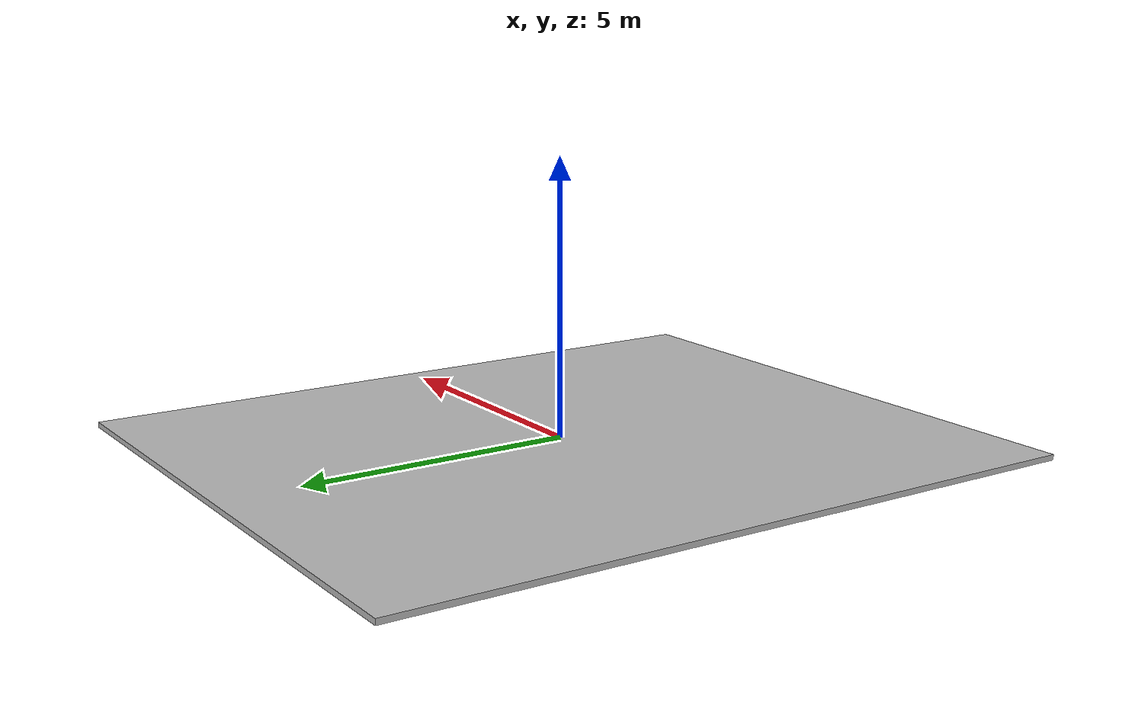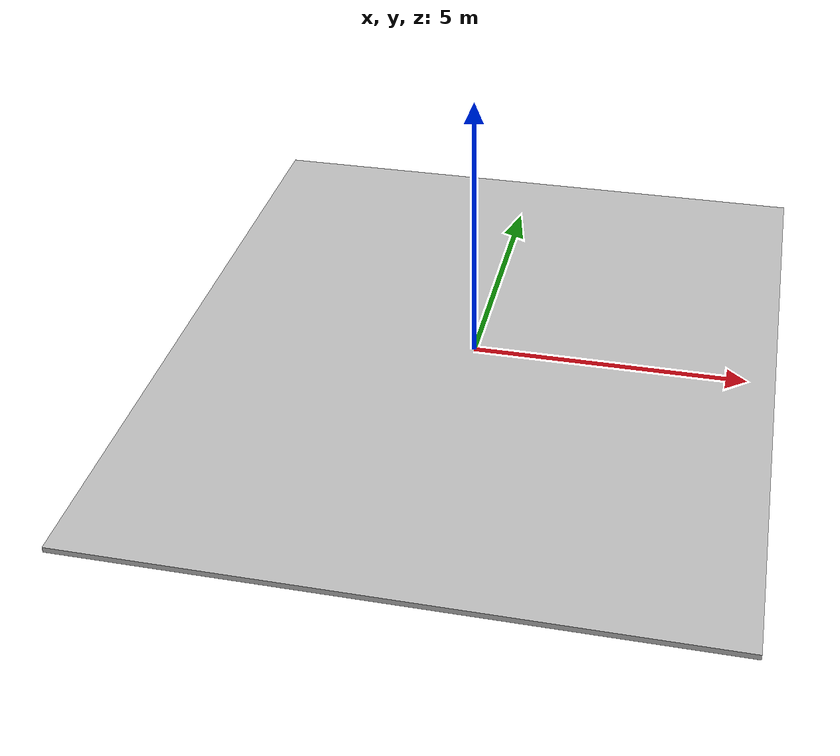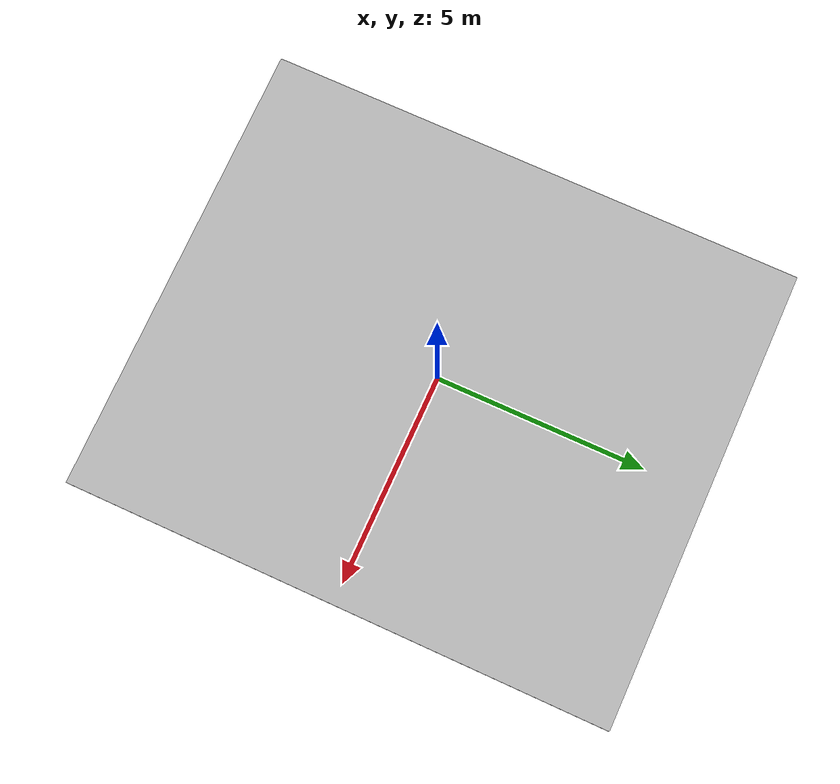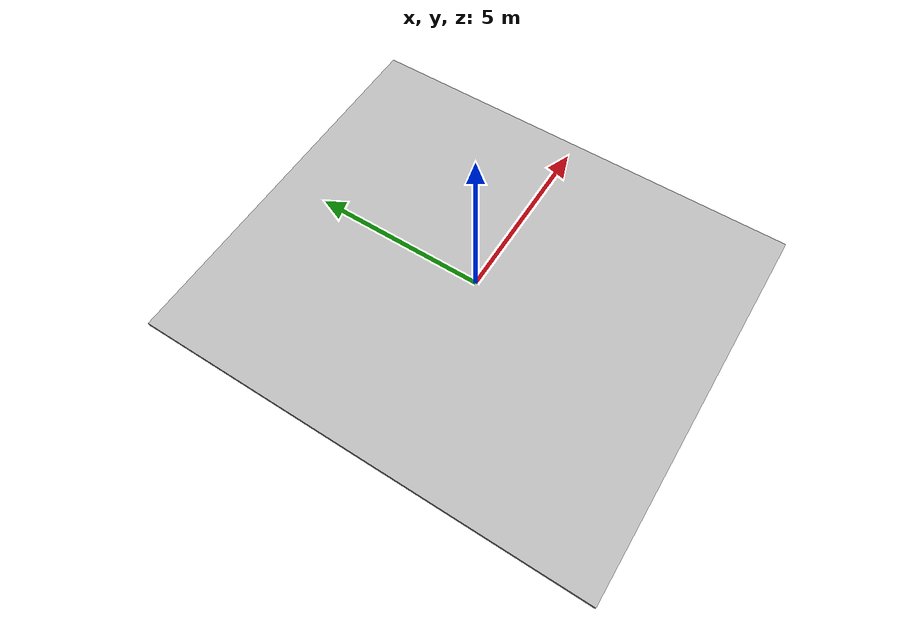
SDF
<?xml version="1.0" ?>
<sdf version="1.6">
  <model name="pisosala_s">
    <static>true</static>
    <link name="course_link">
      <collision name="course_collision">
        <geometry>
          <plane>
            <normal>0 0 1</normal>
            <size>10 13</size>
          </plane>
        </geometry>
        <surface>
          <friction>
            <ode>
              <mu>100</mu>
              <mu2>50</mu2>
            </ode>
          </friction>
        </surface>
      </collision>
      <visual name="course_visual">
        <cast_shadows>false</cast_shadows>
        <geometry>
          <mesh>
            <uri>model://circuito/pisosala/materials/scripts/piso.dae</uri>
            <scale>1 1 1</scale>
          </mesh>
        </geometry>
      </visual>
    </link>
  </model>
</sdf>
